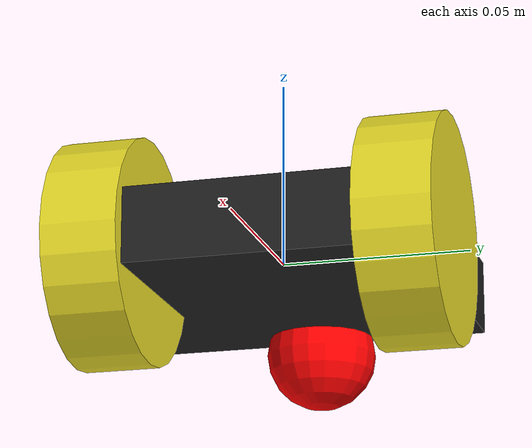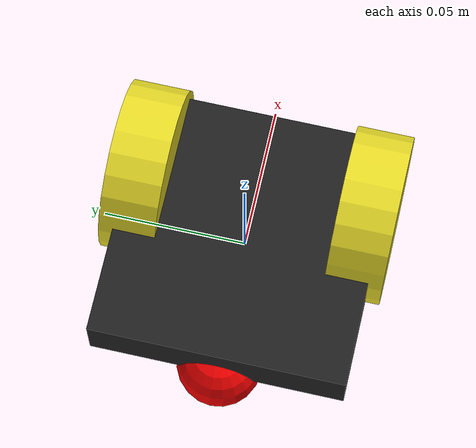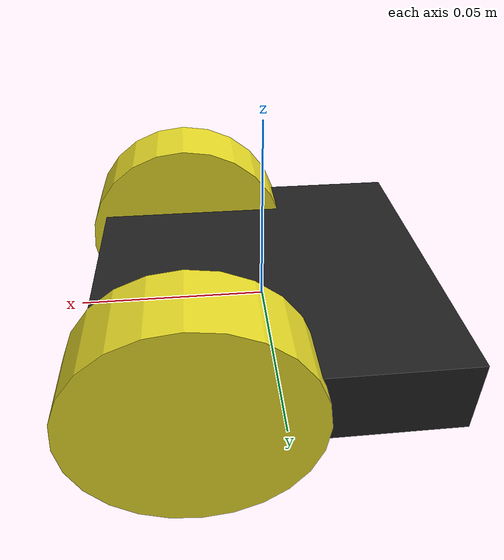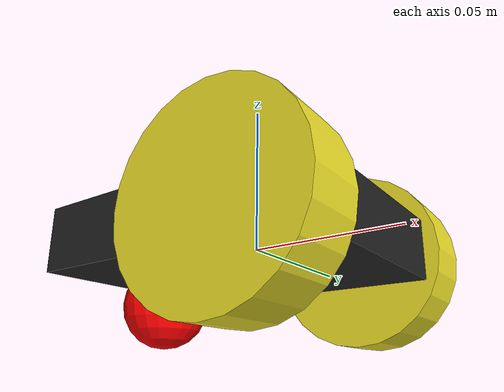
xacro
<?xml version='1.0'?>

<robot name="myrobot" xmlns:xacro="http://www.ros.org/wiki/xacro">

<xacro:property name="camera_link" value="0.01"/>
<xacro:property name="camera_mass" value="0.01"/>

<xacro:include filename="$(find mazerunnerbot)/urdf/materials.xacro"/>
<xacro:include filename="$(find mazerunnerbot)/urdf/bot.gazebo"/>

  <link name='chassis'>
    <pose>0 0 0.1 0 0 0</pose>

    <inertial>
      <mass value="0.5"/>
      <origin xyz="0.0 0 0.1" rpy=" 0 0 0"/>
      <inertia
          ixx="0.0003541666667" ixy="0" ixz="0"
          iyy="0.0003541666667" iyz="0"
          izz="0.000675"
      />
    </inertial>

    <collision name='collision'>
      <geometry>
        <box size=".09 .08 .02"/>
      </geometry>
    </collision>

    <visual name='chassis_visual'>
      <origin xyz="0 0 0" rpy=" 0 0 0"/>
      <geometry>
        <box size=".09 .09 .02"/>
      </geometry>
      <material name="black"/>
    </visual>

  </link>

  <link name="caster_weel">
    <inertial>
      <origin xyz="0.0 0.0 0.0" rpy="0.0 0.0 0.0"/>
      <mass value="0.1"/>
      <inertia ixx="0.000009" ixy="0.0" ixz="0.0" iyy="0.000009" iyz="0.0" izz="0.000009"/>
    </inertial>

    <visual name="">
      <origin xyz="0.0 0.0 0.0" rpy="0.0 0.0 0.0"/>
      <geometry>
       <sphere radius="0.015"/>
      </geometry>
      <material name="">
        <color rgba="1.0 0.0 0.0 1.0"/>
        <texture filename=""/>
      </material>
    </visual>

    <collision>
      <origin xyz="0.0 0.0 0.0" rpy="0.0 0.0 0.0"/>
      <geometry>
       <sphere radius="0.015"/>
      </geometry>
    </collision>
  </link>

  <joint name="caster_joint" type="fixed">
    <origin xyz="-0.04 0 -0.015" rpy="0.0 0.0 0.0"/>
    <parent link="chassis"/>
    <child link="caster_weel"/>
    <axis xyz="0.0 0.0 0.0"/>

  </joint> -

  <link name="left_wheel">
    <!--origin xyz="0.1 0.13 0.1" rpy="0 1.5707 1.5707"/-->
    <collision name="collision">
      <origin xyz="0 0 0" rpy="0 1.5707 1.5707"/>
      <geometry>
        <cylinder radius="0.03" length="0.015"/>
      </geometry>
      <surface>
        <friction>
          <ode>
            <mu>1</mu>
            <mu2>1</mu2>

          </ode>
        </friction>
      </surface>
    </collision>
    <visual name="left_wheel_visual">
      <origin xyz="0 0 0" rpy="0 1.5707 1.5707"/>
      <geometry>
        <cylinder radius="0.03" length="0.02"/>

      </geometry>
      <material name="yellow"/>
    </visual>
    <inertial>
      <origin xyz="0 0 0" rpy="0 1.5707 1.5707"/>
      <mass value="0.1"/>
      <inertia
        ixx=".0000225" ixy="0.0" ixz="0.0"
        iyy=".0000225" iyz="0.0"
        izz=".000045"/>
    </inertial>
  </link>

  <link name="right_wheel">
    <!--origin xyz="0.1 -0.13 0.1" rpy="0 1.5707 1.5707"/-->
    <collision name="collision">
      <origin xyz="0 0 0" rpy="0 1.5707 1.5707"/>
      <geometry>
        <cylinder radius="0.03" length="0.02"/>
      </geometry>
      <surface>
        <friction>
          <ode>
            <mu>1</mu>
            <mu2>1</mu2>

          </ode>
        </friction>
      </surface>
    </collision>
    <visual name="right_wheel_visual">
      <origin xyz="0 0 0" rpy="0 1.5707 1.5707"/>
      <geometry>
        <cylinder radius="0.03" length="0.02"/>

      </geometry>
      <material name="yellow"/>
    </visual>
    <inertial>
      <origin xyz="0 0 0" rpy="0 1.5707 1.5707"/>
      <mass value="0.1"/>
      <inertia
        ixx=".0000225" ixy="0.0" ixz="0.0"
        iyy=".0000225" iyz="0.0"
        izz=".000045"/>
    </inertial>
  </link>
<gazebo reference="right_wheel">
  <mu1>1.0</mu1>
  <mu2>1.0</mu2>
  <kp>1000000.0</kp>
  <kd>100.0</kd>
  <minDepth>0.001</minDepth>
  <maxVel>1.0</maxVel>
</gazebo>

<gazebo reference="left_wheel">
  <mu1>1.0</mu1>
  <mu2>1.0</mu2>
  <kp>1000000.0</kp>
  <kd>100.0</kd>
  <minDepth>0.001</minDepth>
  <maxVel>1.0</maxVel>
</gazebo>

<gazebo reference="caster_weel">
  <mu1>0</mu1>
  <mu2>0</mu2>
  <slip1>1.0</slip1>
  <slip2>1.0</slip2>
</gazebo>

  <joint type="continuous" name="left_wheel_hinge">
    <origin xyz="0.02 0.04 0" rpy="0 0 0"/>
    <!--origin xyz="0.1 0.13 0" rpy="0 1.5707 1.5707"/-->
    <child link="left_wheel"/>
    <parent link="chassis"/>
    <axis xyz="0 1 0" rpy="0 0 0"/>
    <joint_properties damping="0.0" friction="0.0"/>
  </joint>

  <joint type="continuous" name="right_wheel_hinge">
    <origin xyz="0.02 -0.04 0" rpy="0 0 0"/>
    <!--origin xyz="0.1 -0.13 0" rpy="0 1.5707 1.5707"/-->
    <child link="right_wheel"/>
    <parent link="chassis"/>
    <axis xyz="0 1 0" rpy="0 0 0"/>
    <joint_properties damping="0.0" friction="0.0"/>
  </joint>

</robot>
